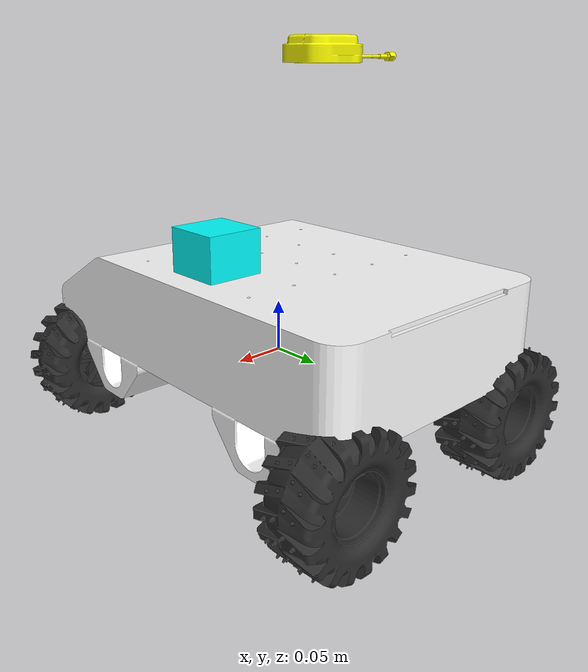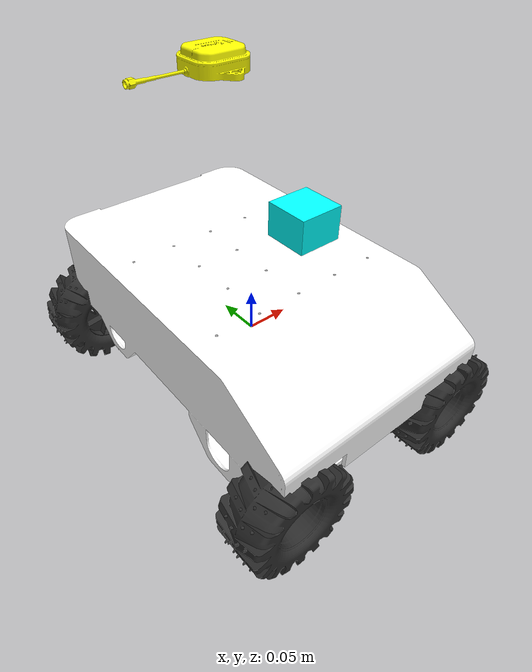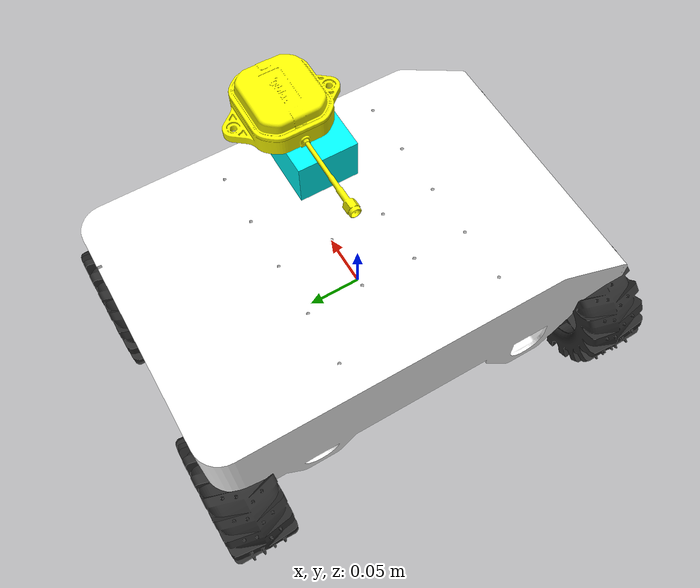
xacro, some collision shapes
<?xml version="1.0"?>
<robot xmlns:xacro="http://www.ros.org/wiki/xacro">

    <xacro:include filename="$(find skd1_description)/urdf/inertial_macros.xacro" />
    <xacro:include filename="$(find skd1_description)/urdf/wheel.urdf.xacro" />

	<!-- Distance between front and rear wheel axles (wheelbase) -->
	<xacro:property name="wheel_distance" value="0.21524" />

	<!-- Distance between the centerlines of the left and right wheels (track width) -->
	<xacro:property name="wheel_separation" value="0.37068" />

	<!-- Z-coordinate of the wheel axle relative to base_link -->
	<xacro:property name="wheel_height" value="0.0328" />

	<!-- Wheel properties -->
	<xacro:property name="wheel_mass" value="0.150" />
	<xacro:property name="wheel_radius" value="0.06" />
	<xacro:property name="wheel_width" value="0.06" />

	<!-- Chassis size -->
	<xacro:property name="chassis_x_size" value="0.410" />
	<xacro:property name="chassis_y_size" value="0.260" />
	<xacro:property name="chassis_z_size" value="0.094" />

	<!-- The 'base_link' is located at the geometric center of the chassis
     (center of the acrylic plate) and positioned above it (5 mm thickness) -->
	<link name="base_link">

		<visual>
    		<origin xyz="0 0 0" rpy="${(pi/2)} 0 ${pi}"/>
			<geometry>
				<mesh filename="file://$(find skd1_description)/meshes/skd1_chassis.stl" scale="0.001 0.001 0.001" />
			</geometry>
			<material name="White">
				<color rgba="1.0 1.0 1.0 1.0"/>
			</material>
		</visual>

		<xacro:property name="chassis_z_offset" value="0.005" />
		<!-- Chassis -->
		<collision>
			<origin xyz="0 0 ${chassis_z_size/2-chassis_z_offset}"/>
			<geometry>
				<box size="${chassis_x_size} ${chassis_y_size} ${chassis_z_size}"/>
			</geometry>
		</collision>
		<!-- Antenna deck -->
		<xacro:property name="deck_x_size" value="0.150" />
		<xacro:property name="deck_y_size" value="0.260" />
		<xacro:property name="deck_z_size" value="0.187" />
		<collision>
			<origin xyz="0 0 ${deck_z_size/2+0.089}"/>
			<geometry>
				<box size="${deck_x_size} ${deck_y_size} ${deck_z_size}"/>
			</geometry>
		</collision>
		<!-- Motor covers -->
		<xacro:property name="mcover_x_size" value="0.0976" />
		<xacro:property name="mcover_y_size" value="0.083" />
		<xacro:property name="mcover_z_size" value="0.0476" />
		<collision> <!-- Front Left-->
			<origin xyz="${wheel_distance/2} ${chassis_y_size/2-mcover_y_size/2} ${-mcover_z_size/2-chassis_z_offset}"/>
			<geometry>
				<box size="${mcover_x_size} ${mcover_y_size} ${mcover_z_size}"/>
			</geometry>
		</collision>
		<collision> <!-- Front Right-->
			<origin xyz="${wheel_distance/2} -${chassis_y_size/2-mcover_y_size/2} ${-mcover_z_size/2-chassis_z_offset}"/>
			<geometry>
				<box size="${mcover_x_size} ${mcover_y_size} ${mcover_z_size}"/>
			</geometry>
		</collision>
		<collision> <!-- Rear Left-->
			<origin xyz="-${wheel_distance/2} ${chassis_y_size/2-mcover_y_size/2} ${-mcover_z_size/2-chassis_z_offset}"/>
			<geometry>
				<box size="${mcover_x_size} ${mcover_y_size} ${mcover_z_size}"/>
			</geometry>
		</collision>
		<collision> <!-- Rear Right-->
			<origin xyz="-${wheel_distance/2} -${chassis_y_size/2-mcover_y_size/2} ${-mcover_z_size/2-chassis_z_offset}"/>
			<geometry>
				<box size="${mcover_x_size} ${mcover_y_size} ${mcover_z_size}"/>
			</geometry>
		</collision>

    </link>

	<!-- Base footprint is on the ground under the robot -->
    <link name="base_footprint">
		<xacro:dummy_inertial />
	</link>

    <joint name="base_footprint_joint" type="fixed">
        <origin xyz="0 0 -${wheel_height+wheel_radius}" rpy="0 0 0" />
        <parent link="base_link" />
        <child link="base_footprint" />
    </joint>

	<!-- Interial link stores the robot's inertial information -->
    <link name="inertial_link">
		<xacro:inertial_box mass="5.0" x="${chassis_x_size}" y="${chassis_y_size}" z="${chassis_z_size}">
            <origin xyz="0 0 0" rpy="0 0 0"/>
        </xacro:inertial_box>
    </link>

    <joint name="inertial_joint" type="fixed">
        <origin xyz="0 0 0" rpy="0 0 0" />
        <parent link="base_link" />
        <child link="inertial_link" />
    </joint>

	<!-- Wheel macros -->
	<xacro:skd1_wheel wheel_prefix="front_left">
		<origin xyz="${wheel_distance/2} ${wheel_separation/2} -${wheel_height}" rpy="0 0 0" />
	</xacro:skd1_wheel>

	<xacro:skd1_wheel wheel_prefix="front_right">
		<origin xyz="${wheel_distance/2} ${-wheel_separation/2} -${wheel_height}" rpy="0 0 0" />
	</xacro:skd1_wheel>

	<xacro:skd1_wheel wheel_prefix="rear_left">
		<origin xyz="${-wheel_distance/2} ${wheel_separation/2} -${wheel_height}" rpy="0 0 0" />
	</xacro:skd1_wheel>

	<xacro:skd1_wheel wheel_prefix="rear_right">
		<origin xyz="${-wheel_distance/2} ${-wheel_separation/2} -${wheel_height}" rpy="0 0 0" />
	</xacro:skd1_wheel>

    <!-- Sensors -->

	<!-- Phidgets Spatial IMU -->
	<link name="phidgets_imu_link">
		<visual>
			<geometry>
				<box size="0.037846 0.038989 0.01338"/>
			</geometry>
			<material name="Magenta">
				<color rgba="1.0 0.0 1.0 1.0"/>
			</material>
		</visual>
		<xacro:dummy_inertial />
	</link>

	<joint name="phidgets_imu_joint" type="fixed">
		<parent link="base_link" />
		<child link="phidgets_imu_link" />
		<origin xyz="0 0 ${0.085-0.006-0.00581}" rpy="0 0 0" />
	</joint>

	<!-- RPLidar C1 -->
	<link name="rplidar_link">
		<visual>
			<origin xyz="0 0 -0.0298" rpy="0 0 0"/>
			<geometry>
				<mesh filename="file://$(find skd1_description)/meshes/RPLidar_C1M1.stl"  scale="0.001 0.001 0.001"/>
			</geometry>
			<material name="Cyan">
				<color rgba="0.0 1.0 1.0 1.0"/>
			</material>
		</visual>
		<collision>
			<origin xyz="0 0 ${-0.0298+0.042/2}" rpy="0 0 0"/>
			<geometry>
				<box size="0.056 0.056 0.042"/>
			</geometry>
		</collision>
		<xacro:dummy_inertial />
	</link>

	<joint name="rplidar_joint" type="fixed">
		<parent link="base_link"/>
		<child link="rplidar_link"/>
		<origin xyz="0.075 0 ${chassis_z_size-0.005+0.005+0.0298}" rpy="0 0 ${pi}"/>
	</joint>

	<link name="ardusimple_gps_link">
		<visual>
			<origin xyz="0 0 0" rpy="0 0 ${pi/2}"/>
			<geometry>
				<mesh filename="file://$(find skd1_description)/meshes/uBlox_ANT2B-ANN.stl"  scale="0.001 0.001 0.001"/>
			</geometry>
			<material name="Yellow">
				<color rgba="1.0 1.0 0.0 1.0"/>
			</material>
		</visual>
		<xacro:dummy_inertial />
	</link>

	<joint name="ardusimple_gps_joint" type="fixed">
		<parent link="base_link" />
		<child link="ardusimple_gps_link" />
		<origin xyz="0 0.055 0.282" rpy="0 0 0" />
	</joint>

	<link name="m8n_gps_link">
		<xacro:dummy_inertial />
	</link>

	<joint name="m8n_gps_joint" type="fixed">
		<parent link="base_link" />
		<child link="m8n_gps_link" />
		<origin xyz="0 -0.055 0.282" rpy="0 0 0" />
	</joint>

</robot>

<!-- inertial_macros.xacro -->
<robot xmlns:xacro="http://www.ros.org/wiki/xacro" >

    <!-- Specify some standard inertial calculations https://en.wikipedia.org/wiki/List_of_moments_of_inertia -->
    <!-- These make use of xacro's mathematical functionality -->

    <xacro:macro name="inertial_sphere" params="mass radius *origin">
        <inertial>
            <xacro:insert_block name="origin"/>
            <mass value="${mass}" />
            <inertia ixx="${(2/5) * mass * (radius*radius)}" ixy="0.0" ixz="0.0"
                    iyy="${(2/5) * mass * (radius*radius)}" iyz="0.0"
                    izz="${(2/5) * mass * (radius*radius)}" />
        </inertial>
    </xacro:macro>

    <xacro:macro name="inertial_box" params="mass x y z *origin">
        <inertial>
            <xacro:insert_block name="origin"/>
            <mass value="${mass}" />
            <inertia ixx="${(1/12) * mass * (y*y+z*z)}" ixy="0.0" ixz="0.0"
                    iyy="${(1/12) * mass * (x*x+z*z)}" iyz="0.0"
                    izz="${(1/12) * mass * (x*x+y*y)}" />
        </inertial>
    </xacro:macro>

    <xacro:macro name="inertial_cylinder" params="mass length radius *origin">
        <inertial>
            <xacro:insert_block name="origin"/>
            <mass value="${mass}" />
            <inertia ixx="${(1/12) * mass * (3*radius*radius + length*length)}" ixy="0.0" ixz="0.0"
                    iyy="${(1/12) * mass * (3*radius*radius + length*length)}" iyz="0.0"
                    izz="${(1/2) * mass * (radius*radius)}" />
        </inertial>
    </xacro:macro>

    <xacro:macro name="dummy_inertial">
        <inertial>
            <origin xyz="0 0 0" rpy="0 0 0"/>
            <mass value="0.001"/>
            <inertia ixx="0.00001" ixy="0" ixz="0"
                     iyy="0.00001" iyz="0"
                     izz="0.00001"/>
        </inertial>
    </xacro:macro>

</robot>

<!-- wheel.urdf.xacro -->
<robot xmlns:xacro="http://ros.org/wiki/xacro">
    <xacro:macro name="skd1_wheel" params="wheel_prefix *joint_pose">
        <xacro:property name="link_name" value="${wheel_prefix}_wheel_link" />
        <xacro:property name="joint_name" value="${wheel_prefix}_wheel_joint" />
        <xacro:property name="transmission_name" value="${wheel_prefix}_wheel_trans" />
        <xacro:property name="actuator_name" value="${wheel_prefix}_wheel_actuator" />

        <link name="${link_name}">
            <visual>
                <origin xyz="0 0 0" rpy="${pi/2} 0 0"/>
                <geometry>
                    <xacro:if value="${wheel_prefix == 'front_left'}">
                        <mesh filename="file://$(find skd1_description)/meshes/tires-dagu-120mm-l.stl"/>
                    </xacro:if>
                    <xacro:if value="${wheel_prefix == 'front_right'}">
                        <mesh filename="file://$(find skd1_description)/meshes/tires-dagu-120mm-r.stl"/>
                    </xacro:if>
                    <xacro:if value="${wheel_prefix == 'rear_left'}">
                        <mesh filename="file://$(find skd1_description)/meshes/tires-dagu-120mm-l.stl"/>
                    </xacro:if>
                    <xacro:if value="${wheel_prefix == 'rear_right'}">
                        <mesh filename="file://$(find skd1_description)/meshes/tires-dagu-120mm-r.stl"/>
                    </xacro:if>
                </geometry>

                <material name="Dark gray">
                    <color rgba="0.175 0.175 0.175 1.0"/>
                </material>
            </visual>
            <collision>
                <origin xyz="0 0 0" rpy="${pi/2} 0 0"/>
                <geometry>
                    <cylinder radius="${wheel_radius}" length="${wheel_width}"/>
                </geometry>
            </collision>
            <xacro:inertial_cylinder mass="${wheel_mass}" length="${wheel_width}" radius="${wheel_radius}">
                <origin xyz="0 0 0" rpy="${pi/2} 0 0"/>
            </xacro:inertial_cylinder>

        </link>

        <gazebo reference="${link_name}">
            <visual>
                <material>
                    <ambient>0.175 0.175 0.175 1.0</ambient>
                    <diffuse>0.175 0.175 0.175 1.0</diffuse>
                    <specular>0.175 0.175 0.175 1.0</specular>
                </material>
            </visual>

        </gazebo>

        <joint name="${joint_name}" type="continuous">
            <parent link="base_link"/>
            <child link="${link_name}" />
            <xacro:insert_block name="joint_pose" />
            <axis xyz="0 1 0" rpy="0 0 0" />
        </joint>

    </xacro:macro>

</robot>
